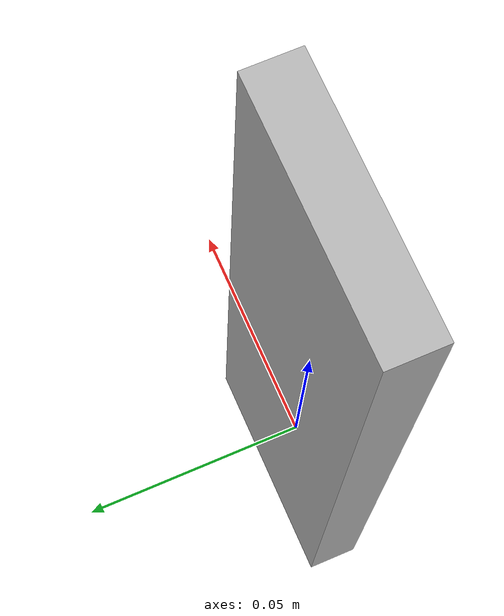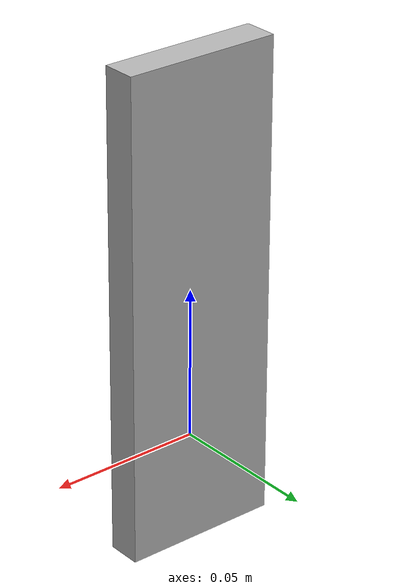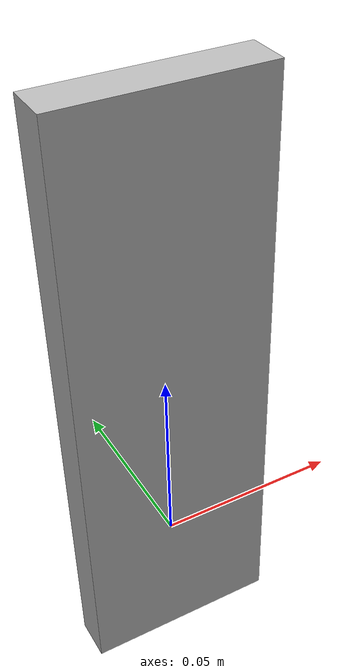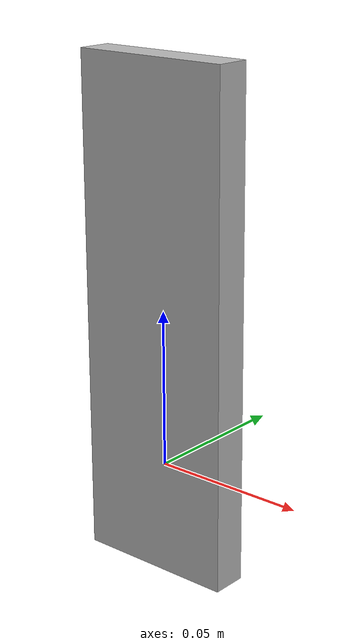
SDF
<?xml version="1.0"?>
<sdf version="1.9">
  <model name="textured_drug_008">
    <static>false</static>
    <self_collide>false</self_collide>
    <link name="body">
      <inertial>
        <pose>0 0 0.046761 0 0 0</pose>
        <mass>0.066502</mass>
        <inertia>
          <ixx>0.00005073</ixx>
          <ixy>0.0</ixy>
          <ixz>0.0</ixz>
          <iyy>0.00019034</iyy>
          <iyz>0.0</iyz>
          <izz>0.00014413</izz>
        </inertia>
      </inertial>
      <collision name="collision">
        <pose>0 0 0.046761 0 0 0</pose>
        <geometry><box><size>0.160000 0.020201 0.093522</size></box></geometry>
        <surface>
          <friction>
            <ode>
              <mu>1.300</mu>
              <mu2>1.300</mu2>
            </ode>
          </friction>
          <contact>
            <ode>
              <kp>120000.0</kp>
              <kd>8.0</kd>
            </ode>
          </contact>
        </surface>
      </collision>
      <visual name="visual">
        <pose>0 0 0.046761 0 0 0</pose>
        <geometry>
          <mesh>
            <uri>meshes/model.obj</uri>
            <scale>1 1.350000 1.000000</scale>
          </mesh>
        </geometry>
      </visual>
    </link>
  </model>
</sdf>
